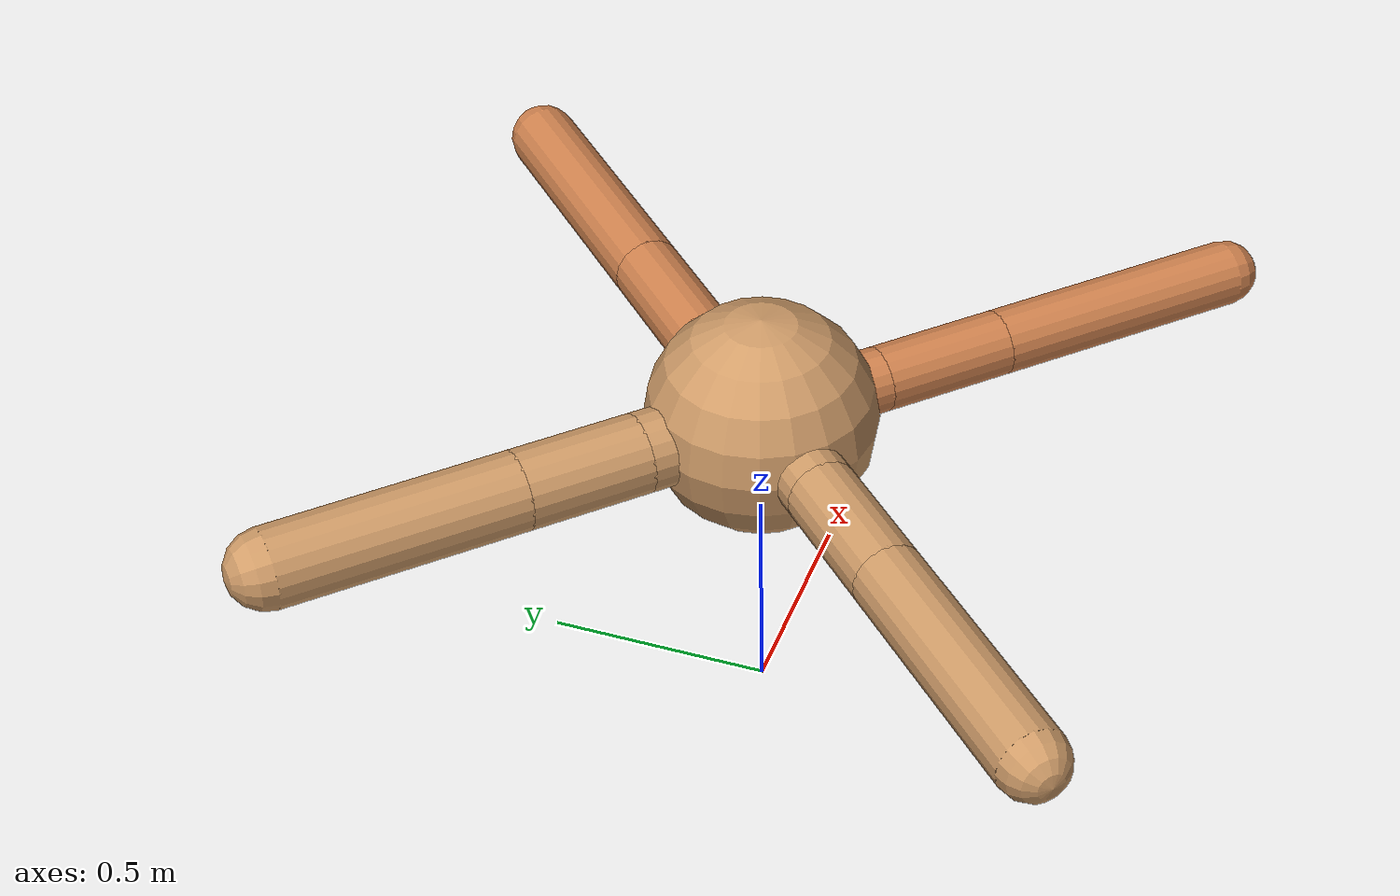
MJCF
<?xml version="1.0" ?>
<mujoco model="ant">

	<compiler angle="degree" coordinate="local" inertiafromgeom="true"/>

	<option integrator="RK4" timestep="0.01"/>

	<custom>

		<numeric data="0.0 0.0 0.55 1.0 0.0 0.0 0.0 0.0 1.0 0.0 -1.0 0.0 -1.0 0.0 1.0" name="init_qpos"/>

	</custom>

	<default>

		<joint armature="1" damping="1" limited="true"/>

		<geom conaffinity="0" condim="3" density="5.0" friction="1.5 0.1 0.1" margin="0.01" rgba="0.8 0.6 0.4 1"/>

	</default>

	<worldbody>

		<body name="torso" pos="0 0 0.75">

			<geom name="torso_geom" pos="0 0 0" size="0.2519383815997397" type="sphere"/>

			<!--joint armature="0" damping="0" limited="false" margin="0.01" name="root" pos="0 0 0" type="free"/-->

			<body name="front_left_leg" pos="0 0 0">

				<geom fromto="0 0 0 0.2 0.2 0" name="aux_1_geom" size="0.07761879075078429" type="capsule" rgba=".8 .5 .3 1"/>

				<body name="aux_1" pos="0.2 0.2 0">

					<joint axis="0 0 1" name="hip_1" pos="0.0 0.0 0.0" range="-40 40" type="hinge"/>

					<geom fromto="0 0 0 0.21211626159243996 0.21211626159243996 0" name="left_leg_geom" size="0.07761879075078429" type="capsule" rgba=".8 .5 .3 1"/>

					<body pos="0.21211626159243996 0.21211626159243996 0" name="front_left_foot">

						<joint axis="-1 1 0" name="ankle_1" pos="0.0 0.0 0.0" range="30 100" type="hinge"/>

						<geom fromto="0 0 0 0.4242325231848799 0.4242325231848799 0" name="left_ankle_geom" size="0.07761879075078429" type="capsule" rgba=".8 .5 .3 1"/>

					</body>

				</body>

			</body>

			<body name="front_right_leg" pos="0 0 0">

				<geom fromto="0 0 0 -0.2 0.2 0" name="aux_2_geom" size="0.087169528640038" type="capsule"/>

				<body name="aux_2" pos="-0.2 0.2 0">

					<joint axis="0 0 1" name="hip_2" pos="0.0 0.0 0.0" range="-40 40" type="hinge"/>

					<geom fromto="0 0 0 -0.19296688642994525 0.19296688642994525 0" name="right_leg_geom" size="0.087169528640038" type="capsule"/>

					<body pos="-0.19296688642994525 0.19296688642994525 0" name="front_right_foot">

						<joint axis="1 1 0" name="ankle_2" pos="0.0 0.0 0.0" range="-100 -30" type="hinge"/>

						<geom fromto="0 0 0 -0.3859337728598905 0.3859337728598905 0" name="right_ankle_geom" size="0.087169528640038" type="capsule"/>

					</body>

				</body>

			</body>

			<body name="left_back_leg" pos="0 0 0">

				<geom fromto="0 0 0 -0.2 -0.2 0" name="aux_3_geom" size="0.07907596370786953" type="capsule"/>

				<body name="aux_3" pos="-0.2 -0.2 0">

					<joint axis="0 0 1" name="hip_3" pos="0.0 0.0 0.0" range="-40 40" type="hinge"/>

					<geom fromto="0 0 0 -0.20228177466057945 -0.20228177466057945 0" name="back_leg_geom" size="0.07907596370786953" type="capsule"/>

					<body pos="-0.20228177466057945 -0.20228177466057945 0" name="left_back_foot">

						<joint axis="-1 1 0" name="ankle_3" pos="0.0 0.0 0.0" range="-100 -30" type="hinge"/>

						<geom fromto="0 0 0 -0.4045635493211589 -0.4045635493211589 0" name="third_ankle_geom" size="0.07907596370786953" type="capsule"/>

					</body>

				</body>

			</body>

			<body name="right_back_leg" pos="0 0 0">

				<geom fromto="0 0 0 0.2 -0.2 0" name="aux_4_geom" size="0.07218556086718009" type="capsule" rgba=".8 .5 .3 1"/>

				<body name="aux_4" pos="0.2 -0.2 0">

					<joint axis="0 0 1" name="hip_4" pos="0.0 0.0 0.0" range="-40 40" type="hinge"/>

					<geom fromto="0 0 0 0.20692005820480644 -0.20692005820480644 0" name="rightback_leg_geom" size="0.07218556086718009" type="capsule" rgba=".8 .5 .3 1"/>

					<body pos="0.20692005820480644 -0.20692005820480644 0" name="right_back_foot">

						<joint axis="1 1 0" name="ankle_4" pos="0.0 0.0 0.0" range="30 100" type="hinge"/>

						<geom fromto="0 0 0 0.4138401164096129 -0.4138401164096129 0" name="fourth_ankle_geom" size="0.07218556086718009" type="capsule" rgba=".8 .5 .3 1"/>

					</body>

				</body>

			</body>

		</body>

	</worldbody>

	<actuator>

		<motor ctrllimited="true" ctrlrange="-1.0 1.0" joint="hip_4" gear="150"/>

		<motor ctrllimited="true" ctrlrange="-1.0 1.0" joint="ankle_4" gear="150"/>

		<motor ctrllimited="true" ctrlrange="-1.0 1.0" joint="hip_1" gear="150"/>

		<motor ctrllimited="true" ctrlrange="-1.0 1.0" joint="ankle_1" gear="150"/>

		<motor ctrllimited="true" ctrlrange="-1.0 1.0" joint="hip_2" gear="150"/>

		<motor ctrllimited="true" ctrlrange="-1.0 1.0" joint="ankle_2" gear="150"/>

		<motor ctrllimited="true" ctrlrange="-1.0 1.0" joint="hip_3" gear="150"/>

		<motor ctrllimited="true" ctrlrange="-1.0 1.0" joint="ankle_3" gear="150"/>

	</actuator>

</mujoco>
